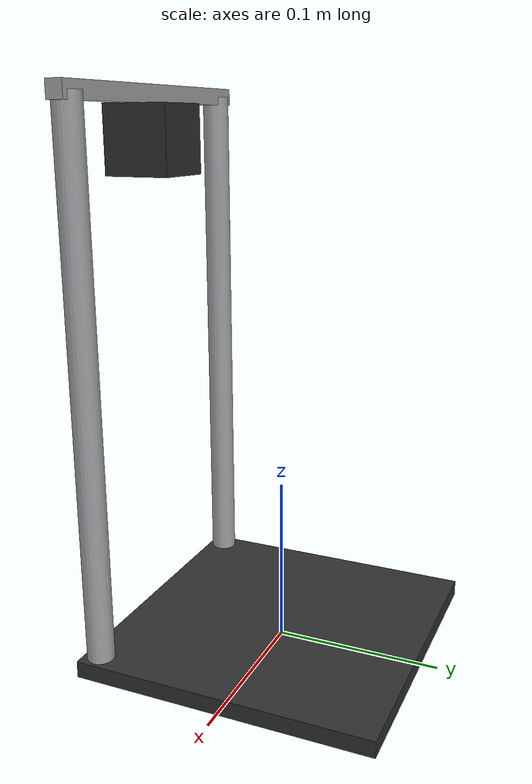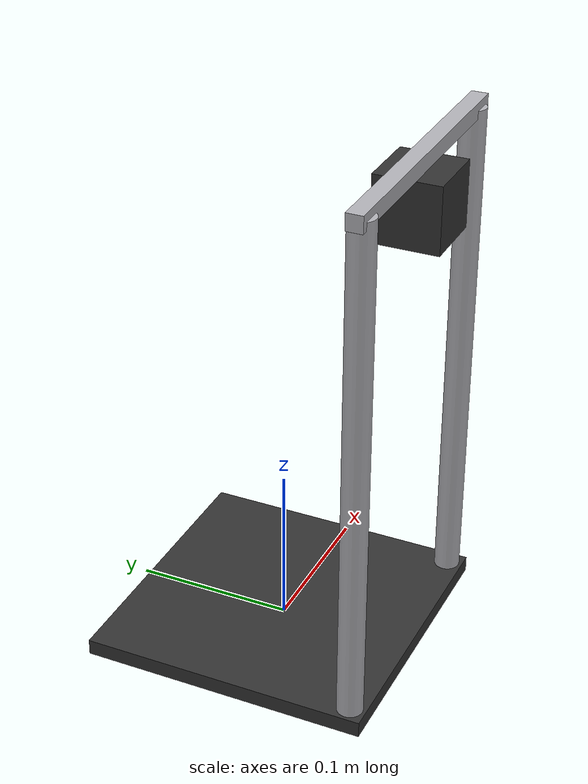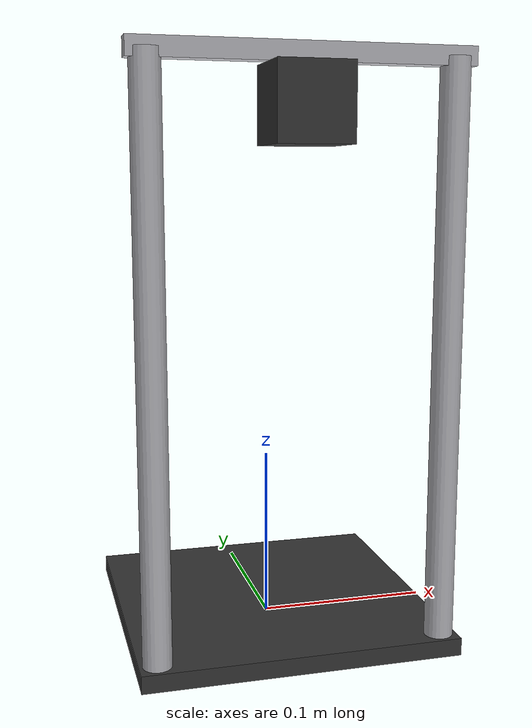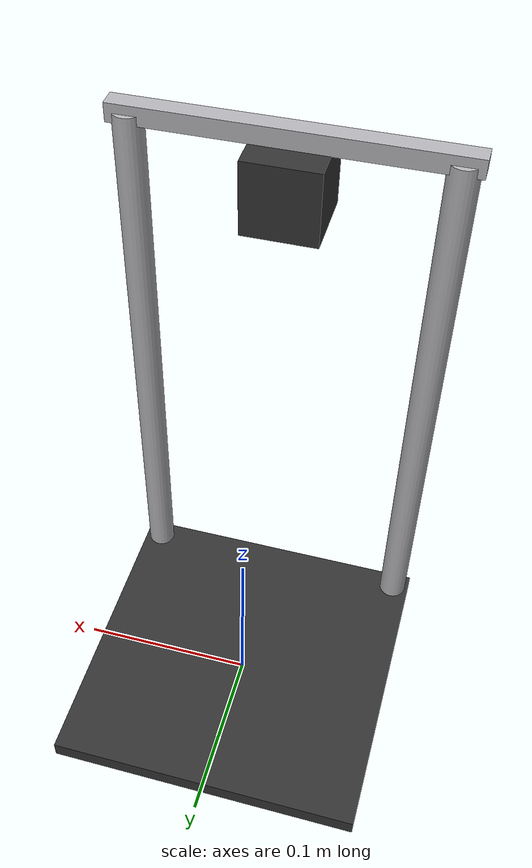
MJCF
<?xml version="1.0" encoding="utf-8"?>
<mujoco model="fdm_3d_printer">
  <compiler angle="radian" autolimits="true"/>
  <default>
    <default class="body"><geom contype="1" conaffinity="1"/></default>
  </default>
  <worldbody>
    <body name="base">
      <geom type="box" size="0.09 0.09 0.005" pos="0 0 0.005" rgba="0.2 0.2 0.2 1" class="body"/>
      <geom type="cylinder" size="0.008 0.16" pos="-0.08 -0.08 0.165" rgba="0.7 0.7 0.72 1" class="body"/>
      <geom type="cylinder" size="0.008 0.16" pos="0.08 -0.08 0.165" rgba="0.7 0.7 0.72 1" class="body"/>
      <geom type="box" size="0.09 0.005 0.005" pos="0 -0.08 0.325" rgba="0.7 0.7 0.72 1" class="body"/>
      <body name="print_head" pos="0 -0.08 0.30">
        <joint name="print_head_joint" type="slide" axis="1 0 0" range="-0.07 0.07" damping="1.0" frictionloss="0.3"/>
  <geom type="box" size="0.02 0.02 0.02" pos="0 0 0" rgba="0.2 0.2 0.2 1" class="body"/>
      </body>
    </body>
  </worldbody>
</mujoco>
